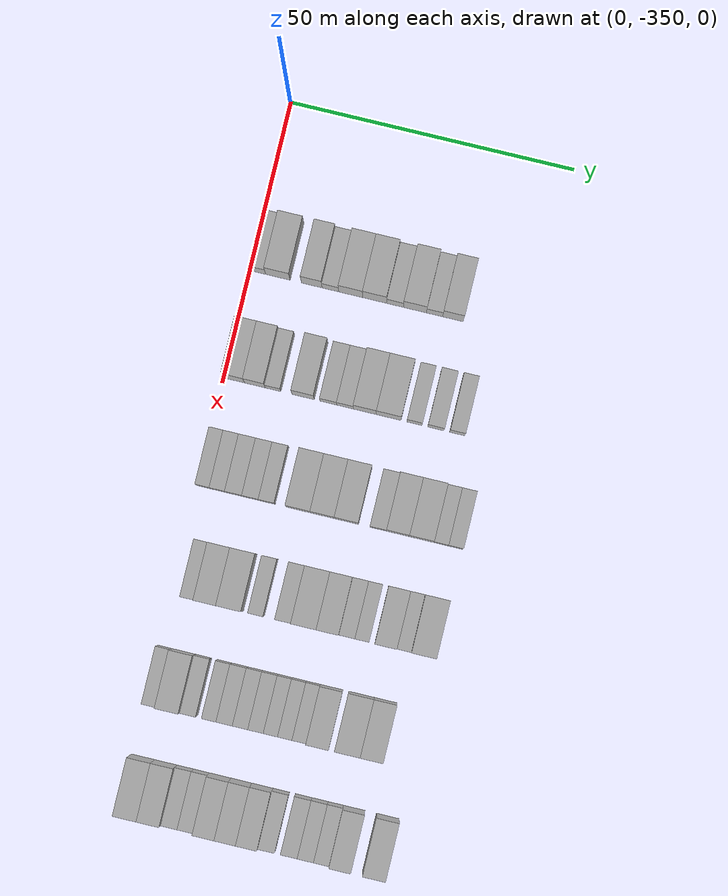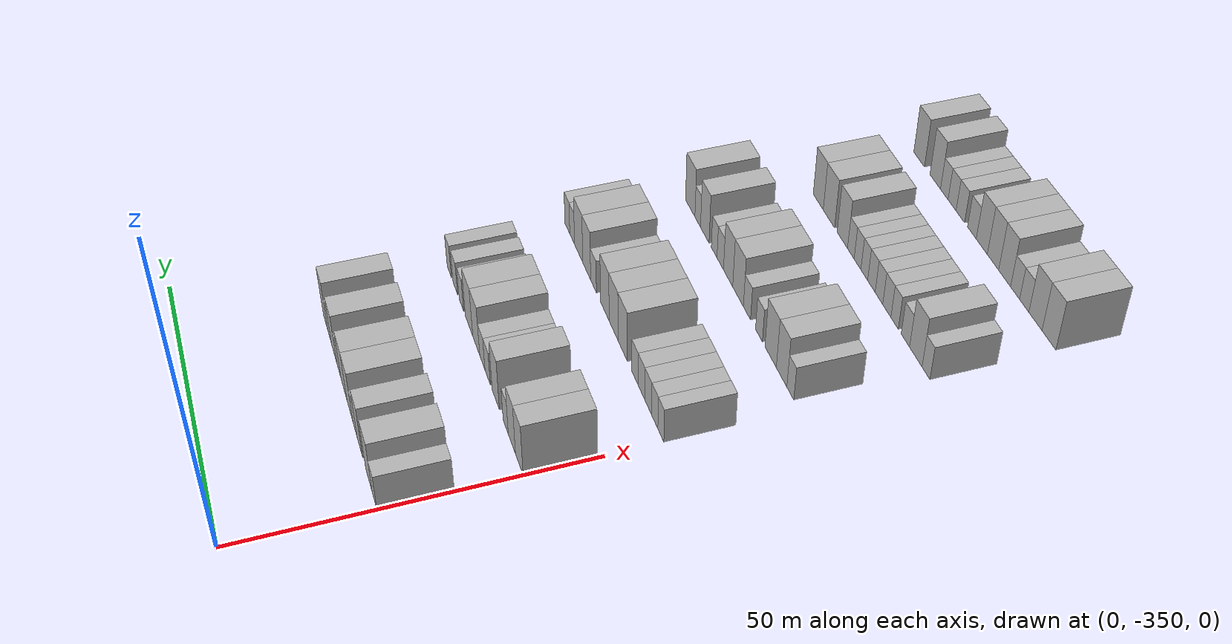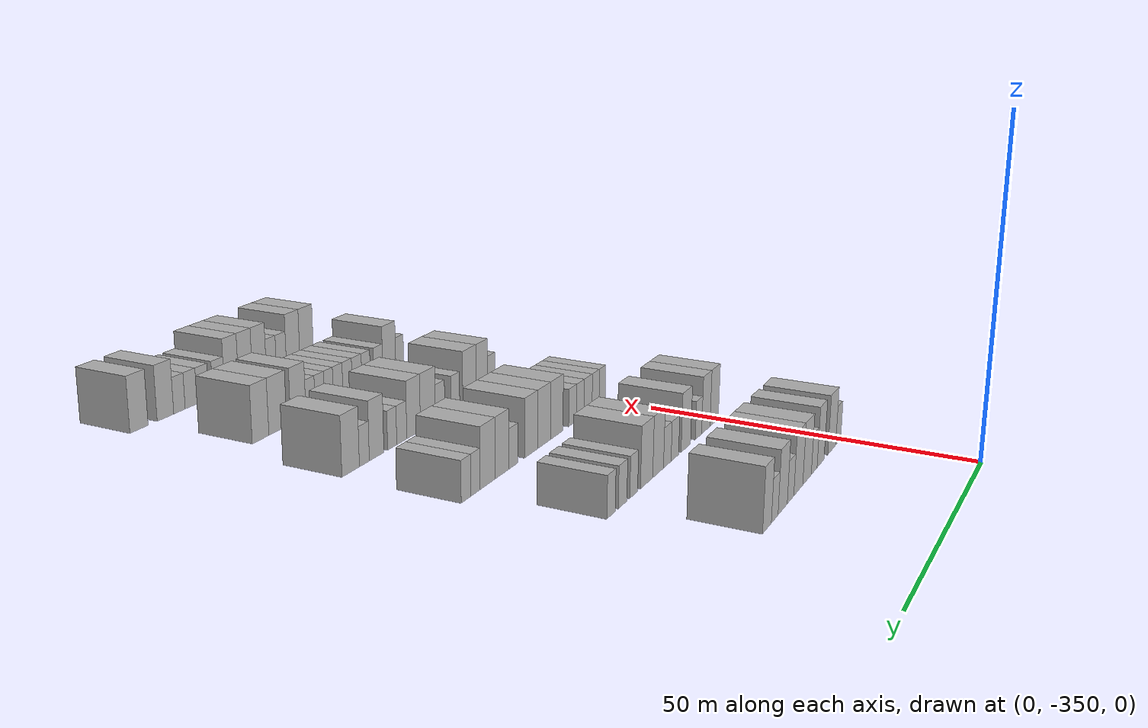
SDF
<sdf version="1.6">
 <world name="default">
  <model name="building_1">
   <static>1</static>
   <pose>25.0000 -348.5807 0 0.000000 0.000000 0.000000</pose>
   <link name="link">
    <pose>0 0 3.00 0 0 0</pose>
    <collision name="collision"><geometry><box><size>10.0000 2.8386 6.0000</size></box></geometry></collision>
    <visual name="visual">
     <cast_shadows>0</cast_shadows>
     <geometry><box><size>10.0000 2.8386 6.0000</size></box></geometry>
     <material>
      <script>
       <uri>model://HANNAS_wall/materials/scripts</uri>
       <uri>model://HANNAS_wall/materials/textures</uri>
       <name>vrc/HANNAS_wall</name>
      </script>
     </material>
    </visual>
   </link>
  </model>
  <model name="building_2">
   <static>1</static>
   <pose>25.0000 -345.0058 0 0.000000 0.000000 0.000000</pose>
   <link name="link">
    <pose>0 0 4.50 0 0 0</pose>
    <collision name="collision"><geometry><box><size>10.0000 4.3112 9.0000</size></box></geometry></collision>
    <visual name="visual">
     <cast_shadows>0</cast_shadows>
     <geometry><box><size>10.0000 4.3112 9.0000</size></box></geometry>
     <material>
      <script>
       <uri>model://HANNAS_wall/materials/scripts</uri>
       <uri>model://HANNAS_wall/materials/textures</uri>
       <name>vrc/HANNAS_wall</name>
      </script>
     </material>
    </visual>
   </link>
  </model>
  <model name="building_3">
   <static>1</static>
   <pose>25.0000 -339.0390 0 0.000000 0.000000 0.000000</pose>
   <link name="link">
    <pose>0 0 4.50 0 0 0</pose>
    <collision name="collision"><geometry><box><size>10.0000 3.6225 9.0000</size></box></geometry></collision>
    <visual name="visual">
     <cast_shadows>0</cast_shadows>
     <geometry><box><size>10.0000 3.6225 9.0000</size></box></geometry>
     <material>
      <script>
       <uri>model://HANNAS_wall/materials/scripts</uri>
       <uri>model://HANNAS_wall/materials/textures</uri>
       <name>vrc/HANNAS_wall</name>
      </script>
     </material>
    </visual>
   </link>
  </model>
  <model name="building_4">
   <static>1</static>
   <pose>25.0000 -335.7632 0 0.000000 0.000000 0.000000</pose>
   <link name="link">
    <pose>0 0 3.00 0 0 0</pose>
    <collision name="collision"><geometry><box><size>10.0000 2.9291 6.0000</size></box></geometry></collision>
    <visual name="visual">
     <cast_shadows>0</cast_shadows>
     <geometry><box><size>10.0000 2.9291 6.0000</size></box></geometry>
     <material>
      <script>
       <uri>model://HANNAS_wall/materials/scripts</uri>
       <uri>model://HANNAS_wall/materials/textures</uri>
       <name>vrc/HANNAS_wall</name>
      </script>
     </material>
    </visual>
   </link>
  </model>
  <model name="building_5">
   <static>1</static>
   <pose>25.0000 -332.2059 0 0.000000 0.000000 0.000000</pose>
   <link name="link">
    <pose>0 0 4.50 0 0 0</pose>
    <collision name="collision"><geometry><box><size>10.0000 4.1853 9.0000</size></box></geometry></collision>
    <visual name="visual">
     <cast_shadows>0</cast_shadows>
     <geometry><box><size>10.0000 4.1853 9.0000</size></box></geometry>
     <material>
      <script>
       <uri>model://HANNAS_wall/materials/scripts</uri>
       <uri>model://HANNAS_wall/materials/textures</uri>
       <name>vrc/HANNAS_wall</name>
      </script>
     </material>
    </visual>
   </link>
  </model>
  <model name="building_6">
   <static>1</static>
   <pose>25.0000 -328.0000 0 0.000000 0.000000 0.000000</pose>
   <link name="link">
    <pose>0 0 4.50 0 0 0</pose>
    <collision name="collision"><geometry><box><size>10.0000 4.2265 9.0000</size></box></geometry></collision>
    <visual name="visual">
     <cast_shadows>0</cast_shadows>
     <geometry><box><size>10.0000 4.2265 9.0000</size></box></geometry>
     <material>
      <script>
       <uri>model://HANNAS_wall/materials/scripts</uri>
       <uri>model://HANNAS_wall/materials/textures</uri>
       <name>vrc/HANNAS_wall</name>
      </script>
     </material>
    </visual>
   </link>
  </model>
  <model name="building_7">
   <static>1</static>
   <pose>25.0000 -324.4025 0 0.000000 0.000000 0.000000</pose>
   <link name="link">
    <pose>0 0 3.00 0 0 0</pose>
    <collision name="collision"><geometry><box><size>10.0000 2.9684 6.0000</size></box></geometry></collision>
    <visual name="visual">
     <cast_shadows>0</cast_shadows>
     <geometry><box><size>10.0000 2.9684 6.0000</size></box></geometry>
     <material>
      <script>
       <uri>model://HANNAS_wall/materials/scripts</uri>
       <uri>model://HANNAS_wall/materials/textures</uri>
       <name>vrc/HANNAS_wall</name>
      </script>
     </material>
    </visual>
   </link>
  </model>
  <model name="building_8">
   <static>1</static>
   <pose>25.0000 -320.8872 0 0.000000 0.000000 0.000000</pose>
   <link name="link">
    <pose>0 0 4.50 0 0 0</pose>
    <collision name="collision"><geometry><box><size>10.0000 4.0622 9.0000</size></box></geometry></collision>
    <visual name="visual">
     <cast_shadows>0</cast_shadows>
     <geometry><box><size>10.0000 4.0622 9.0000</size></box></geometry>
     <material>
      <script>
       <uri>model://HANNAS_wall/materials/scripts</uri>
       <uri>model://HANNAS_wall/materials/textures</uri>
       <name>vrc/HANNAS_wall</name>
      </script>
     </material>
    </visual>
   </link>
  </model>
  <model name="building_9">
   <static>1</static>
   <pose>25.0000 -317.4307 0 0.000000 0.000000 0.000000</pose>
   <link name="link">
    <pose>0 0 3.00 0 0 0</pose>
    <collision name="collision"><geometry><box><size>10.0000 2.8509 6.0000</size></box></geometry></collision>
    <visual name="visual">
     <cast_shadows>0</cast_shadows>
     <geometry><box><size>10.0000 2.8509 6.0000</size></box></geometry>
     <material>
      <script>
       <uri>model://HANNAS_wall/materials/scripts</uri>
       <uri>model://HANNAS_wall/materials/textures</uri>
       <name>vrc/HANNAS_wall</name>
      </script>
     </material>
    </visual>
   </link>
  </model>
  <model name="building_10">
   <static>1</static>
   <pose>25.0000 -314.1935 0 0.000000 0.000000 0.000000</pose>
   <link name="link">
    <pose>0 0 4.50 0 0 0</pose>
    <collision name="collision"><geometry><box><size>10.0000 3.6234 9.0000</size></box></geometry></collision>
    <visual name="visual">
     <cast_shadows>0</cast_shadows>
     <geometry><box><size>10.0000 3.6234 9.0000</size></box></geometry>
     <material>
      <script>
       <uri>model://HANNAS_wall/materials/scripts</uri>
       <uri>model://HANNAS_wall/materials/textures</uri>
       <name>vrc/HANNAS_wall</name>
      </script>
     </material>
    </visual>
   </link>
  </model>
  <model name="building_169">
   <static>1</static>
   <pose>44.0000 -348.1083 0 0.000000 0.000000 0.000000</pose>
   <link name="link">
    <pose>0 0 4.50 0 0 0</pose>
    <collision name="collision"><geometry><box><size>10.0000 3.7835 9.0000</size></box></geometry></collision>
    <visual name="visual">
     <cast_shadows>0</cast_shadows>
     <geometry><box><size>10.0000 3.7835 9.0000</size></box></geometry>
     <material>
      <script>
       <uri>model://HANNAS_wall/materials/scripts</uri>
       <uri>model://HANNAS_wall/materials/textures</uri>
       <name>vrc/HANNAS_wall</name>
      </script>
     </material>
    </visual>
   </link>
  </model>
  <model name="building_170">
   <static>1</static>
   <pose>44.0000 -344.3880 0 0.000000 0.000000 0.000000</pose>
   <link name="link">
    <pose>0 0 4.50 0 0 0</pose>
    <collision name="collision"><geometry><box><size>10.0000 3.6571 9.0000</size></box></geometry></collision>
    <visual name="visual">
     <cast_shadows>0</cast_shadows>
     <geometry><box><size>10.0000 3.6571 9.0000</size></box></geometry>
     <material>
      <script>
       <uri>model://HANNAS_wall/materials/scripts</uri>
       <uri>model://HANNAS_wall/materials/textures</uri>
       <name>vrc/HANNAS_wall</name>
      </script>
     </material>
    </visual>
   </link>
  </model>
  <model name="building_171">
   <static>1</static>
   <pose>44.0000 -341.2174 0 0.000000 0.000000 0.000000</pose>
   <link name="link">
    <pose>0 0 3.00 0 0 0</pose>
    <collision name="collision"><geometry><box><size>10.0000 2.6840 6.0000</size></box></geometry></collision>
    <visual name="visual">
     <cast_shadows>0</cast_shadows>
     <geometry><box><size>10.0000 2.6840 6.0000</size></box></geometry>
     <material>
      <script>
       <uri>model://HANNAS_wall/materials/scripts</uri>
       <uri>model://HANNAS_wall/materials/textures</uri>
       <name>vrc/HANNAS_wall</name>
      </script>
     </material>
    </visual>
   </link>
  </model>
  <model name="building_172">
   <static>1</static>
   <pose>44.0000 -335.9398 0 0.000000 0.000000 0.000000</pose>
   <link name="link">
    <pose>0 0 4.50 0 0 0</pose>
    <collision name="collision"><geometry><box><size>10.0000 3.8714 9.0000</size></box></geometry></collision>
    <visual name="visual">
     <cast_shadows>0</cast_shadows>
     <geometry><box><size>10.0000 3.8714 9.0000</size></box></geometry>
     <material>
      <script>
       <uri>model://HANNAS_wall/materials/scripts</uri>
       <uri>model://HANNAS_wall/materials/textures</uri>
       <name>vrc/HANNAS_wall</name>
      </script>
     </material>
    </visual>
   </link>
  </model>
  <model name="building_173">
   <static>1</static>
   <pose>44.0000 -331.5237 0 0.000000 0.000000 0.000000</pose>
   <link name="link">
    <pose>0 0 3.00 0 0 0</pose>
    <collision name="collision"><geometry><box><size>10.0000 2.9609 6.0000</size></box></geometry></collision>
    <visual name="visual">
     <cast_shadows>0</cast_shadows>
     <geometry><box><size>10.0000 2.9609 6.0000</size></box></geometry>
     <material>
      <script>
       <uri>model://HANNAS_wall/materials/scripts</uri>
       <uri>model://HANNAS_wall/materials/textures</uri>
       <name>vrc/HANNAS_wall</name>
      </script>
     </material>
    </visual>
   </link>
  </model>
  <model name="building_174">
   <static>1</static>
   <pose>44.0000 -328.5867 0 0.000000 0.000000 0.000000</pose>
   <link name="link">
    <pose>0 0 3.00 0 0 0</pose>
    <collision name="collision"><geometry><box><size>10.0000 2.9131 6.0000</size></box></geometry></collision>
    <visual name="visual">
     <cast_shadows>0</cast_shadows>
     <geometry><box><size>10.0000 2.9131 6.0000</size></box></geometry>
     <material>
      <script>
       <uri>model://HANNAS_wall/materials/scripts</uri>
       <uri>model://HANNAS_wall/materials/textures</uri>
       <name>vrc/HANNAS_wall</name>
      </script>
     </material>
    </visual>
   </link>
  </model>
  <model name="building_175">
   <static>1</static>
   <pose>44.0000 -325.1215 0 0.000000 0.000000 0.000000</pose>
   <link name="link">
    <pose>0 0 4.50 0 0 0</pose>
    <collision name="collision"><geometry><box><size>10.0000 4.0172 9.0000</size></box></geometry></collision>
    <visual name="visual">
     <cast_shadows>0</cast_shadows>
     <geometry><box><size>10.0000 4.0172 9.0000</size></box></geometry>
     <material>
      <script>
       <uri>model://HANNAS_wall/materials/scripts</uri>
       <uri>model://HANNAS_wall/materials/textures</uri>
       <name>vrc/HANNAS_wall</name>
      </script>
     </material>
    </visual>
   </link>
  </model>
  <model name="building_176">
   <static>1</static>
   <pose>44.0000 -320.9252 0 0.000000 0.000000 0.000000</pose>
   <link name="link">
    <pose>0 0 4.50 0 0 0</pose>
    <collision name="collision"><geometry><box><size>10.0000 4.3754 9.0000</size></box></geometry></collision>
    <visual name="visual">
     <cast_shadows>0</cast_shadows>
     <geometry><box><size>10.0000 4.3754 9.0000</size></box></geometry>
     <material>
      <script>
       <uri>model://HANNAS_wall/materials/scripts</uri>
       <uri>model://HANNAS_wall/materials/textures</uri>
       <name>vrc/HANNAS_wall</name>
      </script>
     </material>
    </visual>
   </link>
  </model>
  <model name="building_177">
   <static>1</static>
   <pose>44.0000 -316.3981 0 0.000000 0.000000 0.000000</pose>
   <link name="link">
    <pose>0 0 3.00 0 0 0</pose>
    <collision name="collision"><geometry><box><size>10.0000 2.6789 6.0000</size></box></geometry></collision>
    <visual name="visual">
     <cast_shadows>0</cast_shadows>
     <geometry><box><size>10.0000 2.6789 6.0000</size></box></geometry>
     <material>
      <script>
       <uri>model://HANNAS_wall/materials/scripts</uri>
       <uri>model://HANNAS_wall/materials/textures</uri>
       <name>vrc/HANNAS_wall</name>
      </script>
     </material>
    </visual>
   </link>
  </model>
  <model name="building_178">
   <static>1</static>
   <pose>44.0000 -312.6384 0 0.000000 0.000000 0.000000</pose>
   <link name="link">
    <pose>0 0 3.00 0 0 0</pose>
    <collision name="collision"><geometry><box><size>10.0000 2.8405 6.0000</size></box></geometry></collision>
    <visual name="visual">
     <cast_shadows>0</cast_shadows>
     <geometry><box><size>10.0000 2.8405 6.0000</size></box></geometry>
     <material>
      <script>
       <uri>model://HANNAS_wall/materials/scripts</uri>
       <uri>model://HANNAS_wall/materials/textures</uri>
       <name>vrc/HANNAS_wall</name>
      </script>
     </material>
    </visual>
   </link>
  </model>
  <model name="building_179">
   <static>1</static>
   <pose>44.0000 -308.8897 0 0.000000 0.000000 0.000000</pose>
   <link name="link">
    <pose>0 0 3.00 0 0 0</pose>
    <collision name="collision"><geometry><box><size>10.0000 2.6568 6.0000</size></box></geometry></collision>
    <visual name="visual">
     <cast_shadows>0</cast_shadows>
     <geometry><box><size>10.0000 2.6568 6.0000</size></box></geometry>
     <material>
      <script>
       <uri>model://HANNAS_wall/materials/scripts</uri>
       <uri>model://HANNAS_wall/materials/textures</uri>
       <name>vrc/HANNAS_wall</name>
      </script>
     </material>
    </visual>
   </link>
  </model>
  <model name="building_346">
   <static>1</static>
   <pose>63.0000 -348.7653 0 0.000000 0.000000 0.000000</pose>
   <link name="link">
    <pose>0 0 3.00 0 0 0</pose>
    <collision name="collision"><geometry><box><size>10.0000 2.4694 6.0000</size></box></geometry></collision>
    <visual name="visual">
     <cast_shadows>0</cast_shadows>
     <geometry><box><size>10.0000 2.4694 6.0000</size></box></geometry>
     <material>
      <script>
       <uri>model://HANNAS_wall/materials/scripts</uri>
       <uri>model://HANNAS_wall/materials/textures</uri>
       <name>vrc/HANNAS_wall</name>
      </script>
     </material>
    </visual>
   </link>
  </model>
  <model name="building_347">
   <static>1</static>
   <pose>63.0000 -346.1913 0 0.000000 0.000000 0.000000</pose>
   <link name="link">
    <pose>0 0 3.00 0 0 0</pose>
    <collision name="collision"><geometry><box><size>10.0000 2.6785 6.0000</size></box></geometry></collision>
    <visual name="visual">
     <cast_shadows>0</cast_shadows>
     <geometry><box><size>10.0000 2.6785 6.0000</size></box></geometry>
     <material>
      <script>
       <uri>model://HANNAS_wall/materials/scripts</uri>
       <uri>model://HANNAS_wall/materials/textures</uri>
       <name>vrc/HANNAS_wall</name>
      </script>
     </material>
    </visual>
   </link>
  </model>
  <model name="building_348">
   <static>1</static>
   <pose>63.0000 -343.3720 0 0.000000 0.000000 0.000000</pose>
   <link name="link">
    <pose>0 0 3.00 0 0 0</pose>
    <collision name="collision"><geometry><box><size>10.0000 2.9601 6.0000</size></box></geometry></collision>
    <visual name="visual">
     <cast_shadows>0</cast_shadows>
     <geometry><box><size>10.0000 2.9601 6.0000</size></box></geometry>
     <material>
      <script>
       <uri>model://HANNAS_wall/materials/scripts</uri>
       <uri>model://HANNAS_wall/materials/textures</uri>
       <name>vrc/HANNAS_wall</name>
      </script>
     </material>
    </visual>
   </link>
  </model>
  <model name="building_349">
   <static>1</static>
   <pose>63.0000 -340.4558 0 0.000000 0.000000 0.000000</pose>
   <link name="link">
    <pose>0 0 3.00 0 0 0</pose>
    <collision name="collision"><geometry><box><size>10.0000 2.8723 6.0000</size></box></geometry></collision>
    <visual name="visual">
     <cast_shadows>0</cast_shadows>
     <geometry><box><size>10.0000 2.8723 6.0000</size></box></geometry>
     <material>
      <script>
       <uri>model://HANNAS_wall/materials/scripts</uri>
       <uri>model://HANNAS_wall/materials/textures</uri>
       <name>vrc/HANNAS_wall</name>
      </script>
     </material>
    </visual>
   </link>
  </model>
  <model name="building_350">
   <static>1</static>
   <pose>63.0000 -337.6470 0 0.000000 0.000000 0.000000</pose>
   <link name="link">
    <pose>0 0 3.00 0 0 0</pose>
    <collision name="collision"><geometry><box><size>10.0000 2.7452 6.0000</size></box></geometry></collision>
    <visual name="visual">
     <cast_shadows>0</cast_shadows>
     <geometry><box><size>10.0000 2.7452 6.0000</size></box></geometry>
     <material>
      <script>
       <uri>model://HANNAS_wall/materials/scripts</uri>
       <uri>model://HANNAS_wall/materials/textures</uri>
       <name>vrc/HANNAS_wall</name>
      </script>
     </material>
    </visual>
   </link>
  </model>
  <model name="building_351">
   <static>1</static>
   <pose>63.0000 -332.1291 0 0.000000 0.000000 0.000000</pose>
   <link name="link">
    <pose>0 0 4.50 0 0 0</pose>
    <collision name="collision"><geometry><box><size>10.0000 4.2908 9.0000</size></box></geometry></collision>
    <visual name="visual">
     <cast_shadows>0</cast_shadows>
     <geometry><box><size>10.0000 4.2908 9.0000</size></box></geometry>
     <material>
      <script>
       <uri>model://HANNAS_wall/materials/scripts</uri>
       <uri>model://HANNAS_wall/materials/textures</uri>
       <name>vrc/HANNAS_wall</name>
      </script>
     </material>
    </visual>
   </link>
  </model>
  <model name="building_352">
   <static>1</static>
   <pose>63.0000 -327.8931 0 0.000000 0.000000 0.000000</pose>
   <link name="link">
    <pose>0 0 4.50 0 0 0</pose>
    <collision name="collision"><geometry><box><size>10.0000 4.1812 9.0000</size></box></geometry></collision>
    <visual name="visual">
     <cast_shadows>0</cast_shadows>
     <geometry><box><size>10.0000 4.1812 9.0000</size></box></geometry>
     <material>
      <script>
       <uri>model://HANNAS_wall/materials/scripts</uri>
       <uri>model://HANNAS_wall/materials/textures</uri>
       <name>vrc/HANNAS_wall</name>
      </script>
     </material>
    </visual>
   </link>
  </model>
  <model name="building_353">
   <static>1</static>
   <pose>63.0000 -323.7215 0 0.000000 0.000000 0.000000</pose>
   <link name="link">
    <pose>0 0 4.50 0 0 0</pose>
    <collision name="collision"><geometry><box><size>10.0000 4.1620 9.0000</size></box></geometry></collision>
    <visual name="visual">
     <cast_shadows>0</cast_shadows>
     <geometry><box><size>10.0000 4.1620 9.0000</size></box></geometry>
     <material>
      <script>
       <uri>model://HANNAS_wall/materials/scripts</uri>
       <uri>model://HANNAS_wall/materials/textures</uri>
       <name>vrc/HANNAS_wall</name>
      </script>
     </material>
    </visual>
   </link>
  </model>
  <model name="building_354">
   <static>1</static>
   <pose>63.0000 -318.2035 0 0.000000 0.000000 0.000000</pose>
   <link name="link">
    <pose>0 0 3.00 0 0 0</pose>
    <collision name="collision"><geometry><box><size>10.0000 2.8740 6.0000</size></box></geometry></collision>
    <visual name="visual">
     <cast_shadows>0</cast_shadows>
     <geometry><box><size>10.0000 2.8740 6.0000</size></box></geometry>
     <material>
      <script>
       <uri>model://HANNAS_wall/materials/scripts</uri>
       <uri>model://HANNAS_wall/materials/textures</uri>
       <name>vrc/HANNAS_wall</name>
      </script>
     </material>
    </visual>
   </link>
  </model>
  <model name="building_355">
   <static>1</static>
   <pose>63.0000 -314.7839 0 0.000000 0.000000 0.000000</pose>
   <link name="link">
    <pose>0 0 4.50 0 0 0</pose>
    <collision name="collision"><geometry><box><size>10.0000 3.9651 9.0000</size></box></geometry></collision>
    <visual name="visual">
     <cast_shadows>0</cast_shadows>
     <geometry><box><size>10.0000 3.9651 9.0000</size></box></geometry>
     <material>
      <script>
       <uri>model://HANNAS_wall/materials/scripts</uri>
       <uri>model://HANNAS_wall/materials/textures</uri>
       <name>vrc/HANNAS_wall</name>
      </script>
     </material>
    </visual>
   </link>
  </model>
  <model name="building_356">
   <static>1</static>
   <pose>63.0000 -310.6681 0 0.000000 0.000000 0.000000</pose>
   <link name="link">
    <pose>0 0 4.50 0 0 0</pose>
    <collision name="collision"><geometry><box><size>10.0000 4.2666 9.0000</size></box></geometry></collision>
    <visual name="visual">
     <cast_shadows>0</cast_shadows>
     <geometry><box><size>10.0000 4.2666 9.0000</size></box></geometry>
     <material>
      <script>
       <uri>model://HANNAS_wall/materials/scripts</uri>
       <uri>model://HANNAS_wall/materials/textures</uri>
       <name>vrc/HANNAS_wall</name>
      </script>
     </material>
    </visual>
   </link>
  </model>
  <model name="building_357">
   <static>1</static>
   <pose>63.0000 -307.2590 0 0.000000 0.000000 0.000000</pose>
   <link name="link">
    <pose>0 0 3.00 0 0 0</pose>
    <collision name="collision"><geometry><box><size>10.0000 2.5516 6.0000</size></box></geometry></collision>
    <visual name="visual">
     <cast_shadows>0</cast_shadows>
     <geometry><box><size>10.0000 2.5516 6.0000</size></box></geometry>
     <material>
      <script>
       <uri>model://HANNAS_wall/materials/scripts</uri>
       <uri>model://HANNAS_wall/materials/textures</uri>
       <name>vrc/HANNAS_wall</name>
      </script>
     </material>
    </visual>
   </link>
  </model>
  <model name="building_358">
   <static>1</static>
   <pose>63.0000 -304.6840 0 0.000000 0.000000 0.000000</pose>
   <link name="link">
    <pose>0 0 3.00 0 0 0</pose>
    <collision name="collision"><geometry><box><size>10.0000 2.5985 6.0000</size></box></geometry></collision>
    <visual name="visual">
     <cast_shadows>0</cast_shadows>
     <geometry><box><size>10.0000 2.5985 6.0000</size></box></geometry>
     <material>
      <script>
       <uri>model://HANNAS_wall/materials/scripts</uri>
       <uri>model://HANNAS_wall/materials/textures</uri>
       <name>vrc/HANNAS_wall</name>
      </script>
     </material>
    </visual>
   </link>
  </model>
  <model name="building_520">
   <static>1</static>
   <pose>82.0000 -346.7340 0 0.000000 0.000000 0.000000</pose>
   <link name="link">
    <pose>0 0 3.00 0 0 0</pose>
    <collision name="collision"><geometry><box><size>10.0000 2.5320 6.0000</size></box></geometry></collision>
    <visual name="visual">
     <cast_shadows>0</cast_shadows>
     <geometry><box><size>10.0000 2.5320 6.0000</size></box></geometry>
     <material>
      <script>
       <uri>model://HANNAS_wall/materials/scripts</uri>
       <uri>model://HANNAS_wall/materials/textures</uri>
       <name>vrc/HANNAS_wall</name>
      </script>
     </material>
    </visual>
   </link>
  </model>
  <model name="building_521">
   <static>1</static>
   <pose>82.0000 -343.5158 0 0.000000 0.000000 0.000000</pose>
   <link name="link">
    <pose>0 0 4.50 0 0 0</pose>
    <collision name="collision"><geometry><box><size>10.0000 3.9045 9.0000</size></box></geometry></collision>
    <visual name="visual">
     <cast_shadows>0</cast_shadows>
     <geometry><box><size>10.0000 3.9045 9.0000</size></box></geometry>
     <material>
      <script>
       <uri>model://HANNAS_wall/materials/scripts</uri>
       <uri>model://HANNAS_wall/materials/textures</uri>
       <name>vrc/HANNAS_wall</name>
      </script>
     </material>
    </visual>
   </link>
  </model>
  <model name="building_522">
   <static>1</static>
   <pose>82.0000 -339.4014 0 0.000000 0.000000 0.000000</pose>
   <link name="link">
    <pose>0 0 4.50 0 0 0</pose>
    <collision name="collision"><geometry><box><size>10.0000 4.3242 9.0000</size></box></geometry></collision>
    <visual name="visual">
     <cast_shadows>0</cast_shadows>
     <geometry><box><size>10.0000 4.3242 9.0000</size></box></geometry>
     <material>
      <script>
       <uri>model://HANNAS_wall/materials/scripts</uri>
       <uri>model://HANNAS_wall/materials/textures</uri>
       <name>vrc/HANNAS_wall</name>
      </script>
     </material>
    </visual>
   </link>
  </model>
  <model name="building_523">
   <static>1</static>
   <pose>82.0000 -334.9042 0 0.000000 0.000000 0.000000</pose>
   <link name="link">
    <pose>0 0 3.00 0 0 0</pose>
    <collision name="collision"><geometry><box><size>10.0000 2.6703 6.0000</size></box></geometry></collision>
    <visual name="visual">
     <cast_shadows>0</cast_shadows>
     <geometry><box><size>10.0000 2.6703 6.0000</size></box></geometry>
     <material>
      <script>
       <uri>model://HANNAS_wall/materials/scripts</uri>
       <uri>model://HANNAS_wall/materials/textures</uri>
       <name>vrc/HANNAS_wall</name>
      </script>
     </material>
    </visual>
   </link>
  </model>
  <model name="building_524">
   <static>1</static>
   <pose>82.0000 -330.1386 0 0.000000 0.000000 0.000000</pose>
   <link name="link">
    <pose>0 0 3.00 0 0 0</pose>
    <collision name="collision"><geometry><box><size>10.0000 2.8608 6.0000</size></box></geometry></collision>
    <visual name="visual">
     <cast_shadows>0</cast_shadows>
     <geometry><box><size>10.0000 2.8608 6.0000</size></box></geometry>
     <material>
      <script>
       <uri>model://HANNAS_wall/materials/scripts</uri>
       <uri>model://HANNAS_wall/materials/textures</uri>
       <name>vrc/HANNAS_wall</name>
      </script>
     </material>
    </visual>
   </link>
  </model>
  <model name="building_525">
   <static>1</static>
   <pose>82.0000 -326.5158 0 0.000000 0.000000 0.000000</pose>
   <link name="link">
    <pose>0 0 4.50 0 0 0</pose>
    <collision name="collision"><geometry><box><size>10.0000 4.3850 9.0000</size></box></geometry></collision>
    <visual name="visual">
     <cast_shadows>0</cast_shadows>
     <geometry><box><size>10.0000 4.3850 9.0000</size></box></geometry>
     <material>
      <script>
       <uri>model://HANNAS_wall/materials/scripts</uri>
       <uri>model://HANNAS_wall/materials/textures</uri>
       <name>vrc/HANNAS_wall</name>
      </script>
     </material>
    </visual>
   </link>
  </model>
  <model name="building_526">
   <static>1</static>
   <pose>82.0000 -322.3854 0 0.000000 0.000000 0.000000</pose>
   <link name="link">
    <pose>0 0 4.50 0 0 0</pose>
    <collision name="collision"><geometry><box><size>10.0000 3.8758 9.0000</size></box></geometry></collision>
    <visual name="visual">
     <cast_shadows>0</cast_shadows>
     <geometry><box><size>10.0000 3.8758 9.0000</size></box></geometry>
     <material>
      <script>
       <uri>model://HANNAS_wall/materials/scripts</uri>
       <uri>model://HANNAS_wall/materials/textures</uri>
       <name>vrc/HANNAS_wall</name>
      </script>
     </material>
    </visual>
   </link>
  </model>
  <model name="building_527">
   <static>1</static>
   <pose>82.0000 -319.0597 0 0.000000 0.000000 0.000000</pose>
   <link name="link">
    <pose>0 0 3.00 0 0 0</pose>
    <collision name="collision"><geometry><box><size>10.0000 2.7756 6.0000</size></box></geometry></collision>
    <visual name="visual">
     <cast_shadows>0</cast_shadows>
     <geometry><box><size>10.0000 2.7756 6.0000</size></box></geometry>
     <material>
      <script>
       <uri>model://HANNAS_wall/materials/scripts</uri>
       <uri>model://HANNAS_wall/materials/textures</uri>
       <name>vrc/HANNAS_wall</name>
      </script>
     </material>
    </visual>
   </link>
  </model>
  <model name="building_528">
   <static>1</static>
   <pose>82.0000 -316.4398 0 0.000000 0.000000 0.000000</pose>
   <link name="link">
    <pose>0 0 3.00 0 0 0</pose>
    <collision name="collision"><geometry><box><size>10.0000 2.4642 6.0000</size></box></geometry></collision>
    <visual name="visual">
     <cast_shadows>0</cast_shadows>
     <geometry><box><size>10.0000 2.4642 6.0000</size></box></geometry>
     <material>
      <script>
       <uri>model://HANNAS_wall/materials/scripts</uri>
       <uri>model://HANNAS_wall/materials/textures</uri>
       <name>vrc/HANNAS_wall</name>
      </script>
     </material>
    </visual>
   </link>
  </model>
  <model name="building_529">
   <static>1</static>
   <pose>82.0000 -312.3119 0 0.000000 0.000000 0.000000</pose>
   <link name="link">
    <pose>0 0 4.50 0 0 0</pose>
    <collision name="collision"><geometry><box><size>10.0000 3.7917 9.0000</size></box></geometry></collision>
    <visual name="visual">
     <cast_shadows>0</cast_shadows>
     <geometry><box><size>10.0000 3.7917 9.0000</size></box></geometry>
     <material>
      <script>
       <uri>model://HANNAS_wall/materials/scripts</uri>
       <uri>model://HANNAS_wall/materials/textures</uri>
       <name>vrc/HANNAS_wall</name>
      </script>
     </material>
    </visual>
   </link>
  </model>
  <model name="building_530">
   <static>1</static>
   <pose>82.0000 -309.1561 0 0.000000 0.000000 0.000000</pose>
   <link name="link">
    <pose>0 0 3.00 0 0 0</pose>
    <collision name="collision"><geometry><box><size>10.0000 2.5200 6.0000</size></box></geometry></collision>
    <visual name="visual">
     <cast_shadows>0</cast_shadows>
     <geometry><box><size>10.0000 2.5200 6.0000</size></box></geometry>
     <material>
      <script>
       <uri>model://HANNAS_wall/materials/scripts</uri>
       <uri>model://HANNAS_wall/materials/textures</uri>
       <name>vrc/HANNAS_wall</name>
      </script>
     </material>
    </visual>
   </link>
  </model>
  <model name="building_531">
   <static>1</static>
   <pose>82.0000 -305.7415 0 0.000000 0.000000 0.000000</pose>
   <link name="link">
    <pose>0 0 4.50 0 0 0</pose>
    <collision name="collision"><geometry><box><size>10.0000 4.3092 9.0000</size></box></geometry></collision>
    <visual name="visual">
     <cast_shadows>0</cast_shadows>
     <geometry><box><size>10.0000 4.3092 9.0000</size></box></geometry>
     <material>
      <script>
       <uri>model://HANNAS_wall/materials/scripts</uri>
       <uri>model://HANNAS_wall/materials/textures</uri>
       <name>vrc/HANNAS_wall</name>
      </script>
     </material>
    </visual>
   </link>
  </model>
  <model name="building_675">
   <static>1</static>
   <pose>101.0000 -348.7310 0 0.000000 0.000000 0.000000</pose>
   <link name="link">
    <pose>0 0 3.00 0 0 0</pose>
    <collision name="collision"><geometry><box><size>10.0000 2.5379 6.0000</size></box></geometry></collision>
    <visual name="visual">
     <cast_shadows>0</cast_shadows>
     <geometry><box><size>10.0000 2.5379 6.0000</size></box></geometry>
     <material>
      <script>
       <uri>model://HANNAS_wall/materials/scripts</uri>
       <uri>model://HANNAS_wall/materials/textures</uri>
       <name>vrc/HANNAS_wall</name>
      </script>
     </material>
    </visual>
   </link>
  </model>
  <model name="building_676">
   <static>1</static>
   <pose>101.0000 -345.4141 0 0.000000 0.000000 0.000000</pose>
   <link name="link">
    <pose>0 0 4.50 0 0 0</pose>
    <collision name="collision"><geometry><box><size>10.0000 4.0961 9.0000</size></box></geometry></collision>
    <visual name="visual">
     <cast_shadows>0</cast_shadows>
     <geometry><box><size>10.0000 4.0961 9.0000</size></box></geometry>
     <material>
      <script>
       <uri>model://HANNAS_wall/materials/scripts</uri>
       <uri>model://HANNAS_wall/materials/textures</uri>
       <name>vrc/HANNAS_wall</name>
      </script>
     </material>
    </visual>
   </link>
  </model>
  <model name="building_677">
   <static>1</static>
   <pose>101.0000 -341.9784 0 0.000000 0.000000 0.000000</pose>
   <link name="link">
    <pose>0 0 3.00 0 0 0</pose>
    <collision name="collision"><geometry><box><size>10.0000 2.7752 6.0000</size></box></geometry></collision>
    <visual name="visual">
     <cast_shadows>0</cast_shadows>
     <geometry><box><size>10.0000 2.7752 6.0000</size></box></geometry>
     <material>
      <script>
       <uri>model://HANNAS_wall/materials/scripts</uri>
       <uri>model://HANNAS_wall/materials/textures</uri>
       <name>vrc/HANNAS_wall</name>
      </script>
     </material>
    </visual>
   </link>
  </model>
  <model name="building_678">
   <static>1</static>
   <pose>101.0000 -338.3359 0 0.000000 0.000000 0.000000</pose>
   <link name="link">
    <pose>0 0 3.00 0 0 0</pose>
    <collision name="collision"><geometry><box><size>10.0000 2.5099 6.0000</size></box></geometry></collision>
    <visual name="visual">
     <cast_shadows>0</cast_shadows>
     <geometry><box><size>10.0000 2.5099 6.0000</size></box></geometry>
     <material>
      <script>
       <uri>model://HANNAS_wall/materials/scripts</uri>
       <uri>model://HANNAS_wall/materials/textures</uri>
       <name>vrc/HANNAS_wall</name>
      </script>
     </material>
    </visual>
   </link>
  </model>
  <model name="building_679">
   <static>1</static>
   <pose>101.0000 -335.6662 0 0.000000 0.000000 0.000000</pose>
   <link name="link">
    <pose>0 0 3.00 0 0 0</pose>
    <collision name="collision"><geometry><box><size>10.0000 2.8294 6.0000</size></box></geometry></collision>
    <visual name="visual">
     <cast_shadows>0</cast_shadows>
     <geometry><box><size>10.0000 2.8294 6.0000</size></box></geometry>
     <material>
      <script>
       <uri>model://HANNAS_wall/materials/scripts</uri>
       <uri>model://HANNAS_wall/materials/textures</uri>
       <name>vrc/HANNAS_wall</name>
      </script>
     </material>
    </visual>
   </link>
  </model>
  <model name="building_680">
   <static>1</static>
   <pose>101.0000 -332.9188 0 0.000000 0.000000 0.000000</pose>
   <link name="link">
    <pose>0 0 3.00 0 0 0</pose>
    <collision name="collision"><geometry><box><size>10.0000 2.6654 6.0000</size></box></geometry></collision>
    <visual name="visual">
     <cast_shadows>0</cast_shadows>
     <geometry><box><size>10.0000 2.6654 6.0000</size></box></geometry>
     <material>
      <script>
       <uri>model://HANNAS_wall/materials/scripts</uri>
       <uri>model://HANNAS_wall/materials/textures</uri>
       <name>vrc/HANNAS_wall</name>
      </script>
     </material>
    </visual>
   </link>
  </model>
  <model name="building_681">
   <static>1</static>
   <pose>101.0000 -330.2456 0 0.000000 0.000000 0.000000</pose>
   <link name="link">
    <pose>0 0 3.00 0 0 0</pose>
    <collision name="collision"><geometry><box><size>10.0000 2.6811 6.0000</size></box></geometry></collision>
    <visual name="visual">
     <cast_shadows>0</cast_shadows>
     <geometry><box><size>10.0000 2.6811 6.0000</size></box></geometry>
     <material>
      <script>
       <uri>model://HANNAS_wall/materials/scripts</uri>
       <uri>model://HANNAS_wall/materials/textures</uri>
       <name>vrc/HANNAS_wall</name>
      </script>
     </material>
    </visual>
   </link>
  </model>
  <model name="building_682">
   <static>1</static>
   <pose>101.0000 -327.6753 0 0.000000 0.000000 0.000000</pose>
   <link name="link">
    <pose>0 0 3.00 0 0 0</pose>
    <collision name="collision"><geometry><box><size>10.0000 2.4595 6.0000</size></box></geometry></collision>
    <visual name="visual">
     <cast_shadows>0</cast_shadows>
     <geometry><box><size>10.0000 2.4595 6.0000</size></box></geometry>
     <material>
      <script>
       <uri>model://HANNAS_wall/materials/scripts</uri>
       <uri>model://HANNAS_wall/materials/textures</uri>
       <name>vrc/HANNAS_wall</name>
      </script>
     </material>
    </visual>
   </link>
  </model>
  <model name="building_683">
   <static>1</static>
   <pose>101.0000 -325.2034 0 0.000000 0.000000 0.000000</pose>
   <link name="link">
    <pose>0 0 3.00 0 0 0</pose>
    <collision name="collision"><geometry><box><size>10.0000 2.4843 6.0000</size></box></geometry></collision>
    <visual name="visual">
     <cast_shadows>0</cast_shadows>
     <geometry><box><size>10.0000 2.4843 6.0000</size></box></geometry>
     <material>
      <script>
       <uri>model://HANNAS_wall/materials/scripts</uri>
       <uri>model://HANNAS_wall/materials/textures</uri>
       <name>vrc/HANNAS_wall</name>
      </script>
     </material>
    </visual>
   </link>
  </model>
  <model name="building_684">
   <static>1</static>
   <pose>101.0000 -322.7311 0 0.000000 0.000000 0.000000</pose>
   <link name="link">
    <pose>0 0 3.00 0 0 0</pose>
    <collision name="collision"><geometry><box><size>10.0000 2.4603 6.0000</size></box></geometry></collision>
    <visual name="visual">
     <cast_shadows>0</cast_shadows>
     <geometry><box><size>10.0000 2.4603 6.0000</size></box></geometry>
     <material>
      <script>
       <uri>model://HANNAS_wall/materials/scripts</uri>
       <uri>model://HANNAS_wall/materials/textures</uri>
       <name>vrc/HANNAS_wall</name>
      </script>
     </material>
    </visual>
   </link>
  </model>
  <model name="building_685">
   <static>1</static>
   <pose>101.0000 -319.5425 0 0.000000 0.000000 0.000000</pose>
   <link name="link">
    <pose>0 0 4.50 0 0 0</pose>
    <collision name="collision"><geometry><box><size>10.0000 3.9170 9.0000</size></box></geometry></collision>
    <visual name="visual">
     <cast_shadows>0</cast_shadows>
     <geometry><box><size>10.0000 3.9170 9.0000</size></box></geometry>
     <material>
      <script>
       <uri>model://HANNAS_wall/materials/scripts</uri>
       <uri>model://HANNAS_wall/materials/textures</uri>
       <name>vrc/HANNAS_wall</name>
      </script>
     </material>
    </visual>
   </link>
  </model>
  <model name="building_686">
   <static>1</static>
   <pose>101.0000 -314.3764 0 0.000000 0.000000 0.000000</pose>
   <link name="link">
    <pose>0 0 4.50 0 0 0</pose>
    <collision name="collision"><geometry><box><size>10.0000 4.4151 9.0000</size></box></geometry></collision>
    <visual name="visual">
     <cast_shadows>0</cast_shadows>
     <geometry><box><size>10.0000 4.4151 9.0000</size></box></geometry>
     <material>
      <script>
       <uri>model://HANNAS_wall/materials/scripts</uri>
       <uri>model://HANNAS_wall/materials/textures</uri>
       <name>vrc/HANNAS_wall</name>
      </script>
     </material>
    </visual>
   </link>
  </model>
  <model name="building_687">
   <static>1</static>
   <pose>101.0000 -310.1842 0 0.000000 0.000000 0.000000</pose>
   <link name="link">
    <pose>0 0 4.50 0 0 0</pose>
    <collision name="collision"><geometry><box><size>10.0000 3.9695 9.0000</size></box></geometry></collision>
    <visual name="visual">
     <cast_shadows>0</cast_shadows>
     <geometry><box><size>10.0000 3.9695 9.0000</size></box></geometry>
     <material>
      <script>
       <uri>model://HANNAS_wall/materials/scripts</uri>
       <uri>model://HANNAS_wall/materials/textures</uri>
       <name>vrc/HANNAS_wall</name>
      </script>
     </material>
    </visual>
   </link>
  </model>
  <model name="building_841">
   <static>1</static>
   <pose>120.0000 -347.9598 0 0.000000 0.000000 0.000000</pose>
   <link name="link">
    <pose>0 0 4.50 0 0 0</pose>
    <collision name="collision"><geometry><box><size>10.0000 4.0803 9.0000</size></box></geometry></collision>
    <visual name="visual">
     <cast_shadows>0</cast_shadows>
     <geometry><box><size>10.0000 4.0803 9.0000</size></box></geometry>
     <material>
      <script>
       <uri>model://HANNAS_wall/materials/scripts</uri>
       <uri>model://HANNAS_wall/materials/textures</uri>
       <name>vrc/HANNAS_wall</name>
      </script>
     </material>
    </visual>
   </link>
  </model>
  <model name="building_842">
   <static>1</static>
   <pose>120.0000 -343.9518 0 0.000000 0.000000 0.000000</pose>
   <link name="link">
    <pose>0 0 4.50 0 0 0</pose>
    <collision name="collision"><geometry><box><size>10.0000 3.9358 9.0000</size></box></geometry></collision>
    <visual name="visual">
     <cast_shadows>0</cast_shadows>
     <geometry><box><size>10.0000 3.9358 9.0000</size></box></geometry>
     <material>
      <script>
       <uri>model://HANNAS_wall/materials/scripts</uri>
       <uri>model://HANNAS_wall/materials/textures</uri>
       <name>vrc/HANNAS_wall</name>
      </script>
     </material>
    </visual>
   </link>
  </model>
  <model name="building_843">
   <static>1</static>
   <pose>120.0000 -340.5685 0 0.000000 0.000000 0.000000</pose>
   <link name="link">
    <pose>0 0 3.00 0 0 0</pose>
    <collision name="collision"><geometry><box><size>10.0000 2.8308 6.0000</size></box></geometry></collision>
    <visual name="visual">
     <cast_shadows>0</cast_shadows>
     <geometry><box><size>10.0000 2.8308 6.0000</size></box></geometry>
     <material>
      <script>
       <uri>model://HANNAS_wall/materials/scripts</uri>
       <uri>model://HANNAS_wall/materials/textures</uri>
       <name>vrc/HANNAS_wall</name>
      </script>
     </material>
    </visual>
   </link>
  </model>
  <model name="building_844">
   <static>1</static>
   <pose>120.0000 -337.7560 0 0.000000 0.000000 0.000000</pose>
   <link name="link">
    <pose>0 0 3.00 0 0 0</pose>
    <collision name="collision"><geometry><box><size>10.0000 2.7942 6.0000</size></box></geometry></collision>
    <visual name="visual">
     <cast_shadows>0</cast_shadows>
     <geometry><box><size>10.0000 2.7942 6.0000</size></box></geometry>
     <material>
      <script>
       <uri>model://HANNAS_wall/materials/scripts</uri>
       <uri>model://HANNAS_wall/materials/textures</uri>
       <name>vrc/HANNAS_wall</name>
      </script>
     </material>
    </visual>
   </link>
  </model>
  <model name="building_845">
   <static>1</static>
   <pose>120.0000 -334.4713 0 0.000000 0.000000 0.000000</pose>
   <link name="link">
    <pose>0 0 4.50 0 0 0</pose>
    <collision name="collision"><geometry><box><size>10.0000 3.7753 9.0000</size></box></geometry></collision>
    <visual name="visual">
     <cast_shadows>0</cast_shadows>
     <geometry><box><size>10.0000 3.7753 9.0000</size></box></geometry>
     <material>
      <script>
       <uri>model://HANNAS_wall/materials/scripts</uri>
       <uri>model://HANNAS_wall/materials/textures</uri>
       <name>vrc/HANNAS_wall</name>
      </script>
     </material>
    </visual>
   </link>
  </model>
  <model name="building_846">
   <static>1</static>
   <pose>120.0000 -330.7498 0 0.000000 0.000000 0.000000</pose>
   <link name="link">
    <pose>0 0 4.50 0 0 0</pose>
    <collision name="collision"><geometry><box><size>10.0000 3.6677 9.0000</size></box></geometry></collision>
    <visual name="visual">
     <cast_shadows>0</cast_shadows>
     <geometry><box><size>10.0000 3.6677 9.0000</size></box></geometry>
     <material>
      <script>
       <uri>model://HANNAS_wall/materials/scripts</uri>
       <uri>model://HANNAS_wall/materials/textures</uri>
       <name>vrc/HANNAS_wall</name>
      </script>
     </material>
    </visual>
   </link>
  </model>
  <model name="building_847">
   <static>1</static>
   <pose>120.0000 -327.0873 0 0.000000 0.000000 0.000000</pose>
   <link name="link">
    <pose>0 0 4.50 0 0 0</pose>
    <collision name="collision"><geometry><box><size>10.0000 3.6574 9.0000</size></box></geometry></collision>
    <visual name="visual">
     <cast_shadows>0</cast_shadows>
     <geometry><box><size>10.0000 3.6574 9.0000</size></box></geometry>
     <material>
      <script>
       <uri>model://HANNAS_wall/materials/scripts</uri>
       <uri>model://HANNAS_wall/materials/textures</uri>
       <name>vrc/HANNAS_wall</name>
      </script>
     </material>
    </visual>
   </link>
  </model>
  <model name="building_848">
   <static>1</static>
   <pose>120.0000 -323.8006 0 0.000000 0.000000 0.000000</pose>
   <link name="link">
    <pose>0 0 3.00 0 0 0</pose>
    <collision name="collision"><geometry><box><size>10.0000 2.9159 6.0000</size></box></geometry></collision>
    <visual name="visual">
     <cast_shadows>0</cast_shadows>
     <geometry><box><size>10.0000 2.9159 6.0000</size></box></geometry>
     <material>
      <script>
       <uri>model://HANNAS_wall/materials/scripts</uri>
       <uri>model://HANNAS_wall/materials/textures</uri>
       <name>vrc/HANNAS_wall</name>
      </script>
     </material>
    </visual>
   </link>
  </model>
  <model name="building_849">
   <static>1</static>
   <pose>120.0000 -319.8945 0 0.000000 0.000000 0.000000</pose>
   <link name="link">
    <pose>0 0 3.00 0 0 0</pose>
    <collision name="collision"><geometry><box><size>10.0000 2.8962 6.0000</size></box></geometry></collision>
    <visual name="visual">
     <cast_shadows>0</cast_shadows>
     <geometry><box><size>10.0000 2.8962 6.0000</size></box></geometry>
     <material>
      <script>
       <uri>model://HANNAS_wall/materials/scripts</uri>
       <uri>model://HANNAS_wall/materials/textures</uri>
       <name>vrc/HANNAS_wall</name>
      </script>
     </material>
    </visual>
   </link>
  </model>
  <model name="building_850">
   <static>1</static>
   <pose>120.0000 -317.0391 0 0.000000 0.000000 0.000000</pose>
   <link name="link">
    <pose>0 0 3.00 0 0 0</pose>
    <collision name="collision"><geometry><box><size>10.0000 2.8147 6.0000</size></box></geometry></collision>
    <visual name="visual">
     <cast_shadows>0</cast_shadows>
     <geometry><box><size>10.0000 2.8147 6.0000</size></box></geometry>
     <material>
      <script>
       <uri>model://HANNAS_wall/materials/scripts</uri>
       <uri>model://HANNAS_wall/materials/textures</uri>
       <name>vrc/HANNAS_wall</name>
      </script>
     </material>
    </visual>
   </link>
  </model>
  <model name="building_851">
   <static>1</static>
   <pose>120.0000 -314.2994 0 0.000000 0.000000 0.000000</pose>
   <link name="link">
    <pose>0 0 3.00 0 0 0</pose>
    <collision name="collision"><geometry><box><size>10.0000 2.6648 6.0000</size></box></geometry></collision>
    <visual name="visual">
     <cast_shadows>0</cast_shadows>
     <geometry><box><size>10.0000 2.6648 6.0000</size></box></geometry>
     <material>
      <script>
       <uri>model://HANNAS_wall/materials/scripts</uri>
       <uri>model://HANNAS_wall/materials/textures</uri>
       <name>vrc/HANNAS_wall</name>
      </script>
     </material>
    </visual>
   </link>
  </model>
  <model name="building_852">
   <static>1</static>
   <pose>120.0000 -311.0802 0 0.000000 0.000000 0.000000</pose>
   <link name="link">
    <pose>0 0 4.50 0 0 0</pose>
    <collision name="collision"><geometry><box><size>10.0000 3.7734 9.0000</size></box></geometry></collision>
    <visual name="visual">
     <cast_shadows>0</cast_shadows>
     <geometry><box><size>10.0000 3.7734 9.0000</size></box></geometry>
     <material>
      <script>
       <uri>model://HANNAS_wall/materials/scripts</uri>
       <uri>model://HANNAS_wall/materials/textures</uri>
       <name>vrc/HANNAS_wall</name>
      </script>
     </material>
    </visual>
   </link>
  </model>
  <model name="building_853">
   <static>1</static>
   <pose>120.0000 -305.2132 0 0.000000 0.000000 0.000000</pose>
   <link name="link">
    <pose>0 0 4.50 0 0 0</pose>
    <collision name="collision"><geometry><box><size>10.0000 3.9607 9.0000</size></box></geometry></collision>
    <visual name="visual">
     <cast_shadows>0</cast_shadows>
     <geometry><box><size>10.0000 3.9607 9.0000</size></box></geometry>
     <material>
      <script>
       <uri>model://HANNAS_wall/materials/scripts</uri>
       <uri>model://HANNAS_wall/materials/textures</uri>
       <name>vrc/HANNAS_wall</name>
      </script>
     </material>
    </visual>
   </link>
  </model>
 </world>
</sdf>
